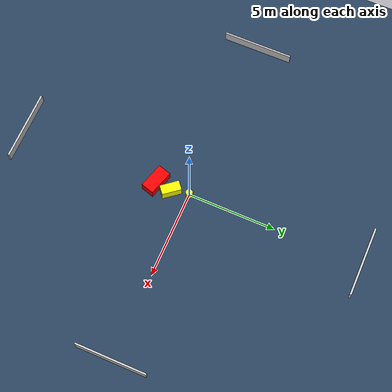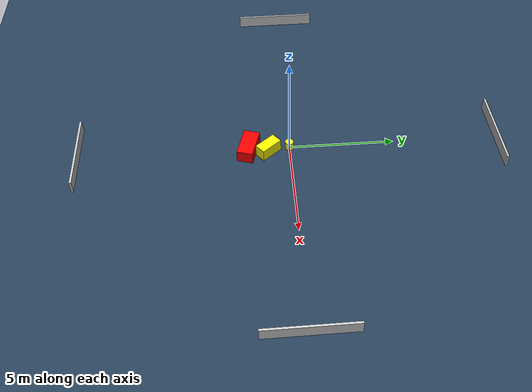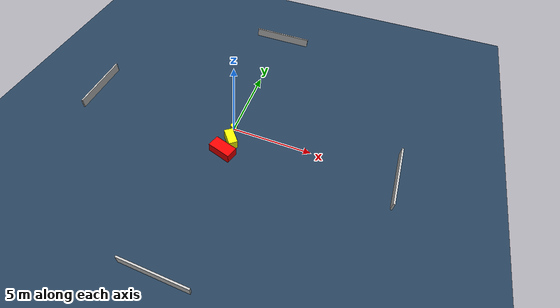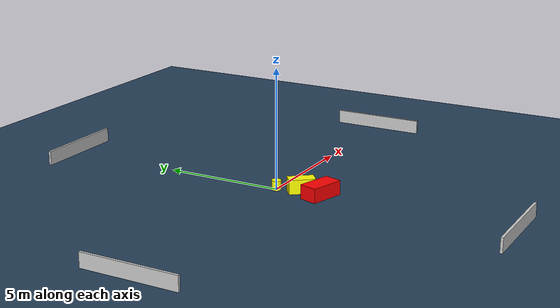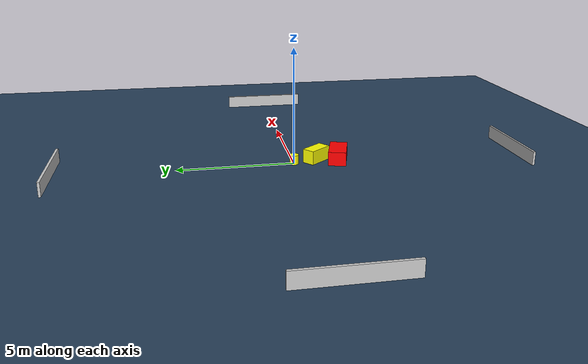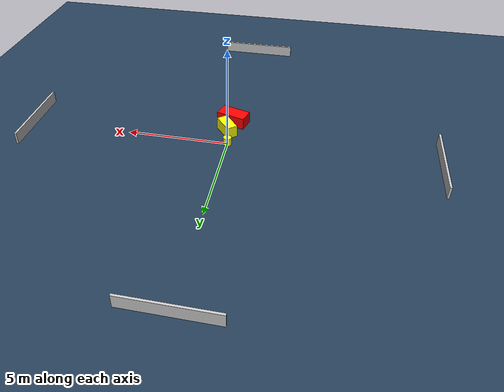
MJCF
<?xml version="1.0" ?>
<mujoco model="generated_environment">
  <option timestep="0.01" integrator="RK4" cone="elliptic"/>
  <default>
    <geom density="1"/>
  </default>
  <asset>
    <texture builtin="gradient" height="3072" name="skybox" rgb1="0.3 0.5 0.7" rgb2="0 0 0" type="skybox" width="512"/>
    <texture builtin="checker" height="300" name="groundplane" rgb1="0.2 0.3 0.4" rgb2="0.1 0.2 0.3" type="2d" width="300"/>
    <material name="groundplane" reflectance="0.2" texrepeat="5 5" texture="groundplane"/>
  </asset>
  <worldbody>
    <light dir="0 0 -1" directional="true" pos="0 0 1.5"/>
    <geom condim="3" friction="0.5 0.005 0.001" material="groundplane" name="floor" pos="0 0 0" size="0 0 0.05" type="plane"/>
    <body name="walls">
      <geom name="wall_1" condim="4" pos="-10.0 0.0 0.3" rgba="0.800000011920929 0.800000011920929 0.800000011920929 1.0" size="0.05 2.0 0.3" type="box"/>
      <geom name="wall_2" condim="4" pos="10.0 0.0 0.3" rgba="0.800000011920929 0.800000011920929 0.800000011920929 1.0" size="0.05 2.0 0.3" type="box"/>
      <geom name="wall_3" condim="4" pos="0.0 -10.0 0.3" rgba="0.800000011920929 0.800000011920929 0.800000011920929 1.0" size="2.0 0.05 0.3" type="box"/>
      <geom name="wall_4" condim="4" pos="0.0 10.0 0.3" rgba="0.800000011920929 0.800000011920929 0.800000011920929 1.0" size="2.0 0.05 0.3" type="box"/>
    </body>
    <body name="robot">
      <joint name="joint_x" type="slide" pos="0 0 0" axis="1 0 0"/>
      <joint name="joint_y" type="slide" pos="0 0 0" axis="0 1 0"/>
      <geom name="robot" type="cylinder" pos="0.0 0.0 0.2" size="0.2 0.2 0.0" mass="5.0" friction="1.0 0.005 0.0001" condim="4" rgba="1.0 1.0 0.0 1.0"/>
    </body>
    <body name="obstacle_1_movable">
      <geom name="obstacle_1_movable" condim="4" pos="0.21846248351327868 -1.012657299807823 0.3" euler="0 0 129.1550262748785" friction="0.0 0.005 0.001" rgba="1.0 1.0 0.0 1.0" size="0.5512625651833072 0.276021461081284 0.3" type="box" mass="0.1"/>
      <joint type="free"/>
    </body>
    <body name="obstacle_2_static">
      <geom name="obstacle_2_static" condim="4" pos="0.07640281597322669 -1.9488898641704029 0.3" euler="0 0 163.48334302185344" friction="0.0 0.005 0.001" rgba="1.0 0.0 0.0 1.0" size="0.734958088561636 0.3788053250316803 0.3" type="box"/>
    </body>
  </worldbody>
  <actuator>
    <motor name="actuator_x" joint="joint_x" gear="1" ctrlrange="-1 1"/>
    <motor name="actuator_y" joint="joint_y" gear="1" ctrlrange="-1 1"/>
  </actuator>
</mujoco>
